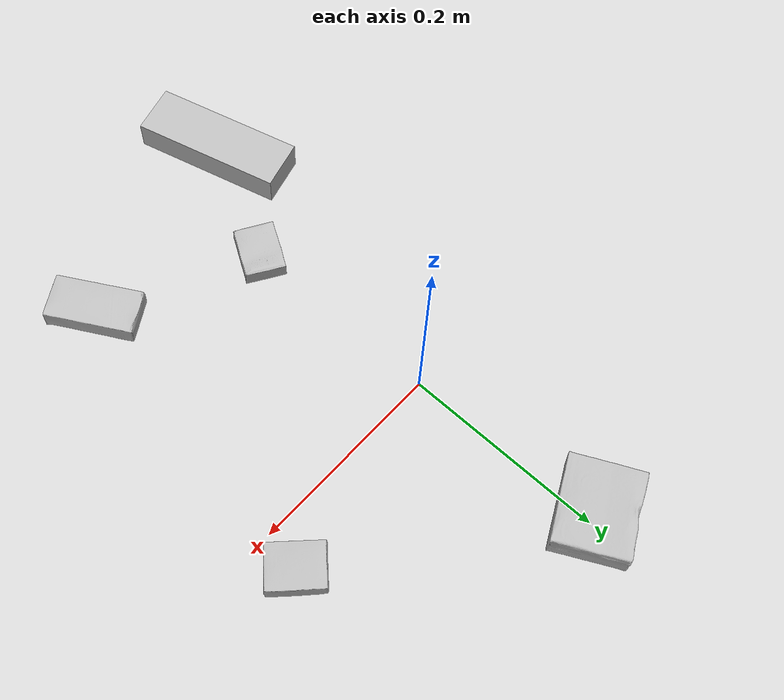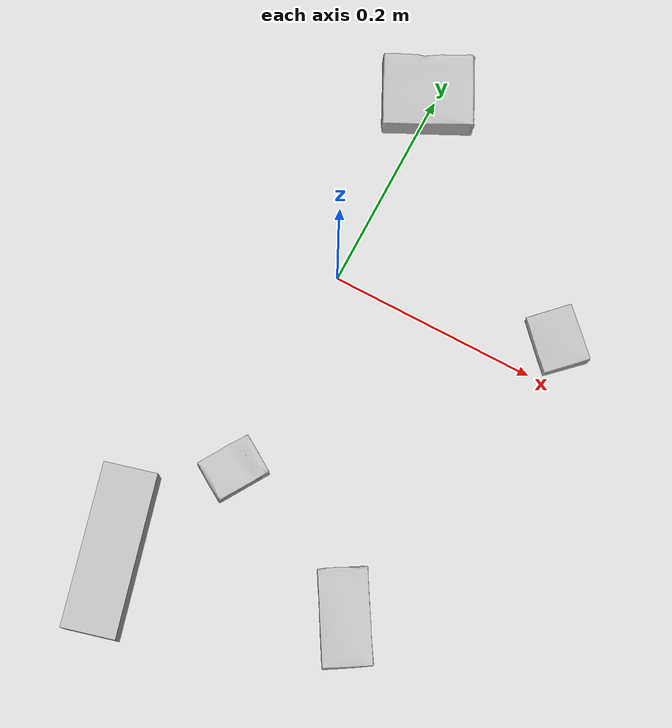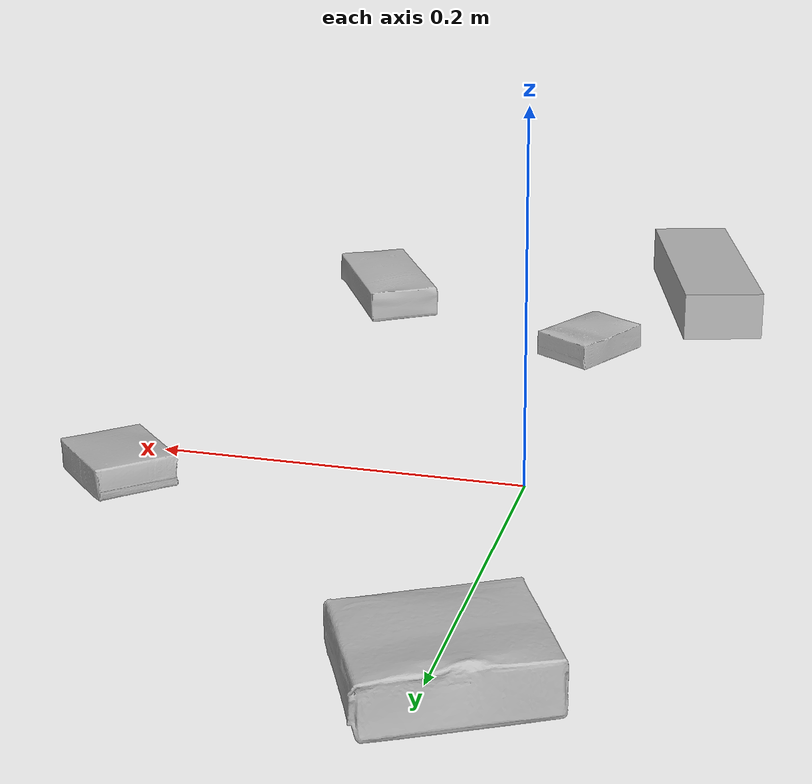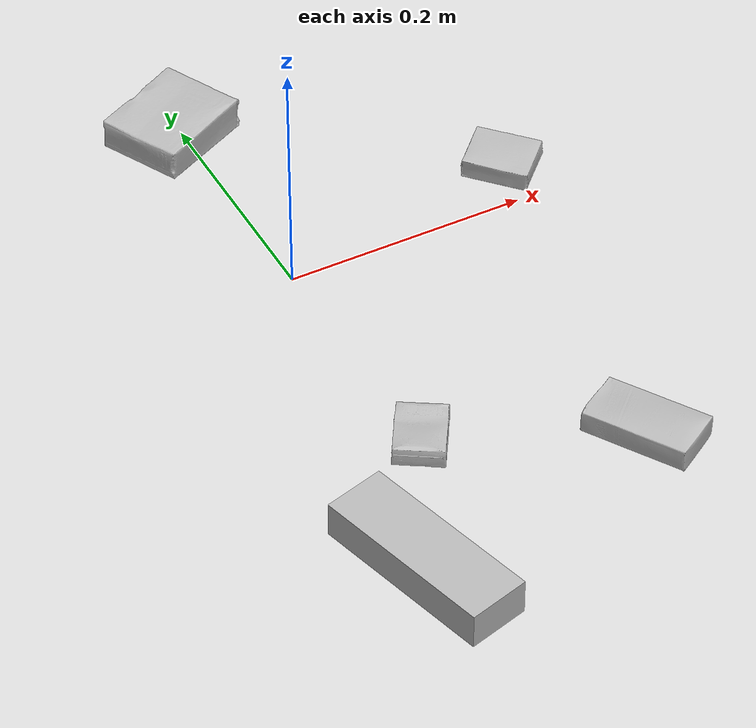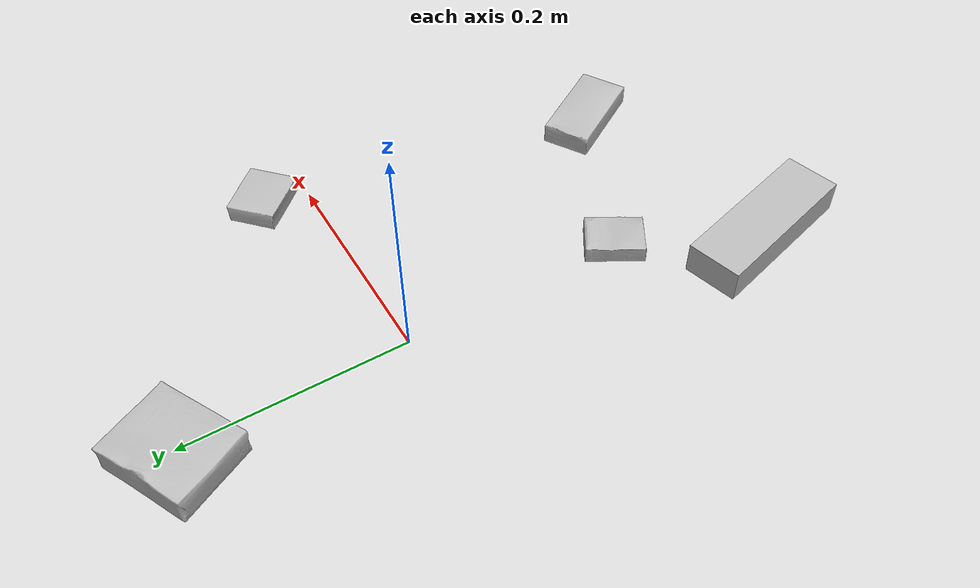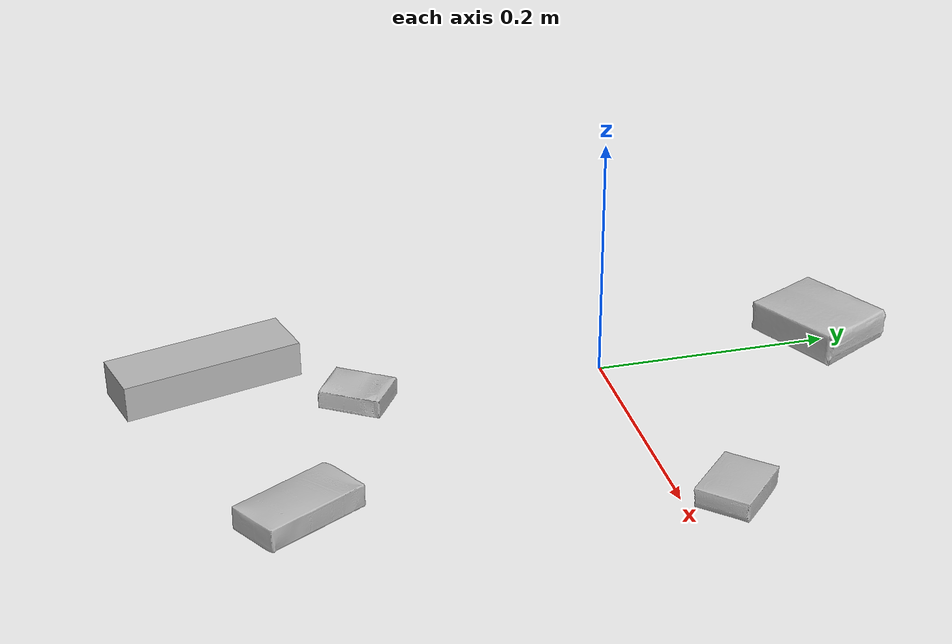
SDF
<sdf version="1.4">
  <world name="default">
    <light name="light1" type="point">
      <pose>0 0 1 0 0 0</pose>
      <diffuse>3 3 3 1</diffuse>
      <specular>3 3 3 1</specular>
    </light>
    <light name="light2" type="point">
      <pose>0 0.5 2 0 0 0</pose>
      <diffuse>1 1 1 1</diffuse>
      <specular>1 1 1 1</specular>
    </light>
    <light name="light3" type="point">
      <pose>0 0.5 2 0 0 0</pose>
      <diffuse>3 3 3 1</diffuse>
      <specular>3 3 3 1</specular>
    </light>
    <scene>
      <ambient>0.7 0.7 0.7</ambient>
    </scene>
    <model name="box1">
      <link name="link_box1">
        <collision name="default">
          <geometry>
            <mesh>
              <uri>model://sugar_box/collision_meshes/collision.obj</uri>
              <scale>0.5 0.5 0.5</scale>
            </mesh>
          </geometry>
          <surface>
            <friction>
              <ode>
                <mu>0.5</mu>
                <mu2>0.5</mu2>
              </ode>
            </friction>
          <contact>
        <ode>
            <max_vel>0</max_vel>
            <min_depth>0.0001</min_depth>
            <kp>1e8</kp>
        </ode>
    </contact></surface>
        </collision>
        <visual name="default">
          <geometry>
            <mesh>
              <uri>model://sugar_box/visual_meshes/visual.dae</uri>
              <scale>0.5 0.5 0.5</scale>
            </mesh>
          </geometry>
        </visual>
        <inertial>
          <mass>0.050072960555553436</mass>
          <pose>0.0005171863595023751 1.924554817378521e-05 -0.00018182402709499002 -0.0004046260967901466 0.0010506635218491861 0.0026153785561980193</pose>
          <inertia>
            <ixx>1.0430162e-05</ixx>
            <iyy>3.371243e-05</iyy>
            <izz>4.0357794e-05</izz>
            <ixy>0</ixy>
            <ixz>0</ixz>
            <iyz>0</iyz>
          </inertia>
        </inertial>
      </link>
      <pose>0.15385158360004425 -0.2753811180591583 0.011399301700294018 0.0007756324283845445 -0.02343272899372388 -1.0352437492260826</pose>
    </model>
    <model name="box2">
      <link name="link_box2">
        <collision name="default">
          <geometry>
            <mesh>
              <uri>model://pudding_box/collision_meshes/collision.obj</uri>
              <scale>0.5 0.5 0.5</scale>
            </mesh>
          </geometry>
          <surface>
            <friction>
              <ode>
                <mu>0.5</mu>
                <mu2>0.5</mu2>
              </ode>
            </friction>
          <contact>
        <ode>
            <max_vel>0</max_vel>
            <min_depth>0.0001</min_depth>
            <kp>1e8</kp>
        </ode>
    </contact></surface>
        </collision>
        <visual name="default">
          <geometry>
            <mesh>
              <uri>model://pudding_box/visual_meshes/visual.dae</uri>
              <scale>0.5 0.5 0.5</scale>
            </mesh>
          </geometry>
        </visual>
        <inertial>
          <mass>0.026034390553832054</mass>
          <pose>0.00024474109522998333 0.00040339428232982755 -0.0002594413817860186 0.005213101355963405 -0.006603798228586091 0.020079817710543634</pose>
          <inertia>
            <ixx>7.3576343e-06</ixx>
            <iyy>4.9502682e-06</iyy>
            <izz>1.086547e-05</izz>
            <ixy>0</ixy>
            <ixz>0</ixz>
            <iyz>0</iyz>
          </inertia>
        </inertial>
      </link>
      <pose>0.2081335335969925 0.040340859442949295 0.009862905368208885 0.02234816873954277 -0.011391954043514367 0.7801946176632698</pose>
    </model>
    <model name="box3">
      <link name="link_box3">
        <collision name="default">
          <geometry>
            <mesh>
              <uri>model://jenga/collision_meshes/collision.obj</uri>
              <scale>1.0 1.0 1.0</scale>
            </mesh>
          </geometry>
          <surface>
            <friction>
              <ode>
                <mu>0.5</mu>
                <mu2>0.5</mu2>
              </ode>
            </friction>
          <contact>
        <ode>
            <max_vel>0</max_vel>
            <min_depth>0.0001</min_depth>
            <kp>1e8</kp>
        </ode>
    </contact></surface>
        </collision>
        <visual name="default">
          <geometry>
            <mesh>
              <uri>model://jenga/visual_meshes/visual.dae</uri>
              <scale>1.0 1.0 1.0</scale>
            </mesh>
          </geometry>
        </visual>
        <inertial>
          <mass>0.2076648771762848</mass>
          <pose>-2.502856091268768e-07 -0.00010250010382151231 -4.0923405322246253e-05 0.0 -7.34215461761844e-07 0.0</pose>
          <inertia>
            <ixx>5.746591e-05</ixx>
            <iyy>0.00038938745</iyy>
            <izz>0.0004157042</izz>
            <ixy>0</ixy>
            <ixz>0</ixz>
            <iyz>0</iyz>
          </inertia>
        </inertial>
      </link>
      <pose>-0.05681014060974121 -0.32226353883743286 0.014999995008111 1.3260102657190682e-08 4.585411293490445e-10 1.8370406144774922</pose>
    </model>
    <model name="box4">
      <link name="link_box4">
        <collision name="default">
          <geometry>
            <mesh>
              <uri>model://gelatin_box/collision_meshes/collision.obj</uri>
              <scale>1.0 1.0 1.0</scale>
            </mesh>
          </geometry>
          <surface>
            <friction>
              <ode>
                <mu>0.5</mu>
                <mu2>0.5</mu2>
              </ode>
            </friction>
          <contact>
        <ode>
            <max_vel>0</max_vel>
            <min_depth>0.0001</min_depth>
            <kp>1e8</kp>
        </ode>
    </contact></surface>
        </collision>
        <visual name="default">
          <geometry>
            <mesh>
              <uri>model://gelatin_box/visual_meshes/visual.dae</uri>
              <scale>1.0 1.0 1.0</scale>
            </mesh>
          </geometry>
        </visual>
        <inertial>
          <mass>0.09577830880880356</mass>
          <pose>0.000431961816502735 0.00011156871187267825 -0.0003640321083366871 -0.0010503719862657887 -0.004755821487046037 0.01644055388468454</pose>
          <inertia>
            <ixx>6.761167e-05</ixx>
            <iyy>4.8294667e-05</iyy>
            <izz>0.00010292002</izz>
            <ixy>0</ixy>
            <ixz>0</ixz>
            <iyz>0</iyz>
          </inertia>
        </inertial>
      </link>
      <pose>-0.00779122905805707 0.19964800775051117 0.015168310143053532 0.005596527794205072 -0.007303541373141832 2.0287568199199413</pose>
    </model>
    <model name="box5">
      <link name="link_box5">
        <collision name="default">
          <geometry>
            <mesh>
              <uri>model://cracker_box/collision_meshes/collision.obj</uri>
              <scale>0.25 0.25 0.25</scale>
            </mesh>
          </geometry>
          <surface>
            <friction>
              <ode>
                <mu>0.5</mu>
                <mu2>0.5</mu2>
              </ode>
            </friction>
          <contact>
        <ode>
            <max_vel>0</max_vel>
            <min_depth>0.0001</min_depth>
            <kp>1e8</kp>
        </ode>
    </contact></surface>
        </collision>
        <visual name="default">
          <geometry>
            <mesh>
              <uri>model://cracker_box/visual_meshes/visual.dae</uri>
              <scale>0.25 0.25 0.25</scale>
            </mesh>
          </geometry>
        </visual>
        <inertial>
          <mass>0.019404999911785126</mass>
          <pose>0.00023660343140363693 6.358561950037256e-05 -0.00042573839891701937 -0.00031620745436260704 -0.011106489600575076 0.0025467952338677235</pose>
          <inertia>
            <ixx>3.084854e-06</ixx>
            <iyy>5.093699e-06</iyy>
            <izz>7.269177e-06</izz>
            <ixy>0</ixy>
            <ixz>0</ixz>
            <iyz>0</iyz>
          </inertia>
        </inertial>
      </link>
      <pose>0.0023631942458450794 -0.20538443326950073 0.009120452217757702 -0.01178795229014885 -0.007367155257368432 -2.123263786743727</pose>
    </model>
  <physics type="ode">
      <max_contacts>50</max_contacts>
      <ode>
        <solver>
          <type>quick</type>
          <iters>75</iters>
        </solver>
        <constraints>
          <contact_max_correcting_vel>0</contact_max_correcting_vel>
          <contact_surface_layer>0</contact_surface_layer>
        </constraints>
      </ode>
    </physics></world>
</sdf>
